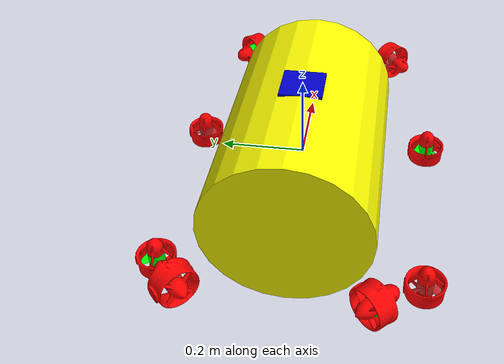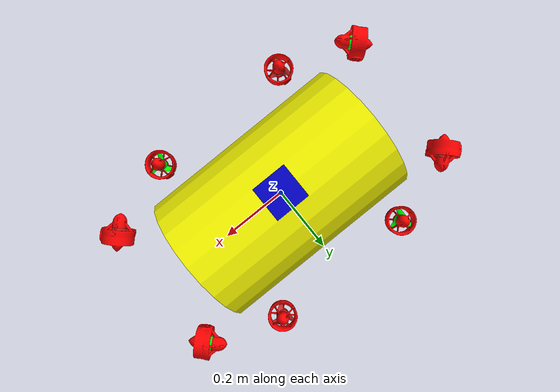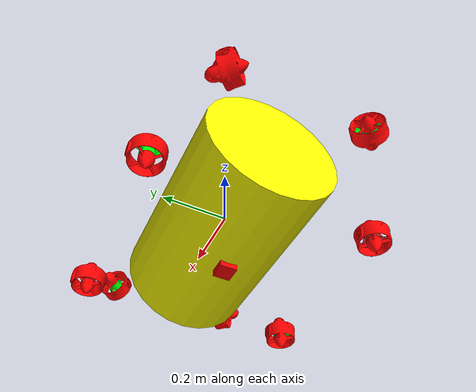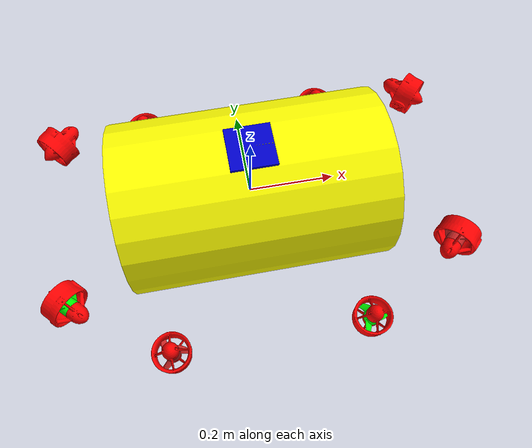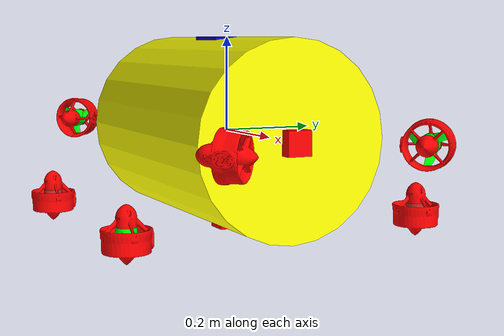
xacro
<?xml version="1.0"?>
<robot xmlns:xacro="http://www.ros.org/wiki/xacro" name="auv">

    <xacro:include filename="$(find calypso_sim)/model/camera.urdf.xacro"/>
    <xacro:include filename="$(find calypso_sim)/model/imu.urdf.xacro"/>
    <xacro:include filename="$(find calypso_sim)/model/thrusters.urdf.xacro"/>
    <xacro:include filename="$(find calypso_sim)/model/chasis.urdf.xacro"/>

    <material name="red">
        <color rgba="1 0 0 1"/>
    </material>

    <material name="blue">
        <color rgba="0 0 0.8 1"/>
    </material>

    <material name="white">
        <color rgba="1 1 1 1"/>
    </material>

     <material name="yellow">
        <color rgba="1 1 0 1"/>
    </material>

      <material name="green">
        <color rgba="0 1 0 1"/>
    </material>

    <xacro:property name="x" default="-0.26"/>
    <xacro:property name="y" default="0.43"/>
    <xacro:property name="z" default="0"/>
    <xacro:property name="r" default="1.57"/>
    <xacro:property name="p" default="0"/>
    <xacro:property name="Y" default="0"/>

    <xacro:base_link xyz="0 0 0" rpy="0 1.57 0"></xacro:base_link>

    <!--
// 2:right upper 1->2
// 1:left upper  2->1
// 4:left lower  3->4
// 3:right lower 4->3
// 6->7
// 7->8
// 8->6

-->

    <xacro:thruster_CCW id="1" parent="base_link" xyz="0.25 0.32 -0.17" rpy="0 0 0" axis="0 0 -1">
    </xacro:thruster_CCW>

    <xacro:thruster_CW id="2" parent="base_link" xyz="0.25 -0.32 -0.17" rpy="0 0 0" axis="0 0 1">
    </xacro:thruster_CW>

    <xacro:thruster_CCW id="3" parent="base_link" xyz="-0.25 -0.32 -0.17" rpy="0 0 0" axis="0 0 -1" >
    </xacro:thruster_CCW>

    <xacro:thruster_CW id="4" parent="base_link" xyz="-0.25 0.32 -0.17" rpy="0 0 0" axis="0 0 1">
    </xacro:thruster_CW>

    <xacro:thruster_CW id="5" parent="base_link" xyz="0.45 0.2 0" rpy="0 1.57 2.35619" axis="0 0 1">
    </xacro:thruster_CW>

    <xacro:thruster_CCW id="6" parent="base_link" xyz="0.45 -0.2 0" rpy="0 1.57 3.92" axis="0 0 -1">
    </xacro:thruster_CCW>

    <xacro:thruster_CW id="7" parent="base_link" xyz="-0.45 -0.2 0" rpy="0 1.57 -0.785398" axis="0 0 1">
    </xacro:thruster_CW>

    <xacro:thruster_CCW id="8" parent="base_link" xyz="-0.45 0.2 0" rpy="0 1.57 0.785398" axis="0 0 -1">
    </xacro:thruster_CCW>

    <xacro:imu id="1" parent="base_link" xyz="0 0 0.15" rpy="0 0 -1.57">
    </xacro:imu>

<!-- this is for the 2d camera in the bottom -->
    <link name="camera_bottom">
      <visual>
        <geometry>
          <box size="0.05 0.05 0.05"/>
        </geometry>
        <material name="red"/>
      </visual>
      <collision>
        <geometry>
          <box size="0.05 0.05 0.05"/>
        </geometry>
      </collision>
      <inertial>
        <mass value="1.5"/>
        <origin xyz="0.0 0.0 0.0" rpy="0 0 0"/>
        <inertia ixx="0.0" ixy="0.0" ixz="0.0" iyy="0.0" iyz="0.0" izz="0.0"/>
      </inertial>
    </link>

    <joint name="base_link_to_camera_bottom_joint" type="fixed">
      <parent link="base_link"/>
      <child link="camera_bottom"/>
      <origin xyz="0 0 -0.19" rpy="1.57 1.57 0"/>
    </joint>

    <joint name="camera_optical_joint_bottom" type="fixed">
      <parent link="camera_bottom"/>
      <child link="camera_link_optical_bottom"/>
      <origin xyz="0 0 0" rpy="${-pi/2} 0 ${-pi/2}"/>
    </joint>

    <link name="camera_link_optical_bottom"></link>

    <gazebo reference="camera_bottom">
      <material>Gazebo/Red</material>

      <sensor name="camera" type="camera">
        <pose> 0 0 0 0 0 0 </pose>
        <visualize>true</visualize>
        <update_rate>10</update_rate>
        <camera>
          <horizontal_fov>1.089</horizontal_fov>
          <image>
            <format>R8G8B8</format>
            <width>640</width>
            <height>480</height>
          </image>
          <clip>
            <near>0.05</near>
            <far>8.0</far>
          </clip>
        </camera>
        <plugin name="camera_controller" filename="libgazebo_ros_camera.so">
          <frame_name>camera_link_optical_bottom</frame_name>
          <cameraName>calypso_sim/camera_bottom</cameraName>
          <imageTopicName>image_raw</imageTopicName>
        </plugin>
      </sensor>
    </gazebo>

<!-- this is for the depth camera in the front -->
    <link name="camera_front">
      <visual>
        <geometry>
          <box size="0.05 0.05 0.05"/>
        </geometry>
        <material name="red"/>
      </visual>
      <collision>
        <geometry>
          <box size="0.05 0.05 0.05"/>
        </geometry>
      </collision>
      <inertial>
        <mass value="1.5"/>
        <origin xyz="0.0 0.0 0.0" rpy="0 0 0"/>
        <inertia ixx="0.0" ixy="0.0" ixz="0.0" iyy="0.0" iyz="0.0" izz="0.0"/>
      </inertial>
    </link>

    <joint name="base_link_to_camera_front_joint" type="fixed">
      <parent link="base_link"/>
      <child link="camera_front"/>
      <origin xyz="0.3 0 0" rpy="0 0 0"/>
    </joint>

    <joint name="camera_optical_joint_front" type="fixed">
      <parent link="camera_front"/>
      <child link="camera_link_optical_front"/>
      <origin xyz="0 0 0" rpy="${-pi/2} 0 ${-pi/2}"/>
    </joint>

    <link name="camera_link_optical_front"></link>

    <gazebo reference="camera_front">
      <material>Gazebo/Red</material>

      <sensor name="camera" type="depth">
        <pose> 0 0 0 0 0 0 </pose>
        <visualize>true</visualize>
        <update_rate>10</update_rate>
        <camera>
          <horizontal_fov>1.089</horizontal_fov>
          <image>
            <format>B8G8R8</format>
            <width>640</width>
            <height>480</height>
          </image>
          <clip>
            <near>0.05</near>
            <far>8.0</far>
          </clip>
        </camera>
        <plugin name="camera_plugin" filename="libgazebo_ros_openni_kinect.so">
          <frame_name>camera_link_optical_front</frame_name>

          <alwaysOn>true</alwaysOn>
          <cameraName>calypso_sim/camera_front</cameraName>
          <imageTopicName>/yash_cam/image_raw</imageTopicName>
          <depthImageTopicName>image_raw</depthImageTopicName>
          <depthImageCameraInfoTopicName>camera_info</depthImageCameraInfoTopicName>
          <pointCloudTopicName>points</pointCloudTopicName>
          <pointCloudCutoff>0.5</pointCloudCutoff>
          <pointCloudCutoffMax>3.0</pointCloudCutoffMax>

        </plugin>
      </sensor>
    </gazebo>

    <gazebo>
      <plugin name="gazebo_ros_control" filename="libgazebo_ros_control.so">
          <robotSimType>gazebo_ros_control/DefaultRobotHWSim</robotSimType>
      </plugin>
    </gazebo>

  <gazebo>
    <plugin name="freebuoyancy_gazebo" filename="libfreebuoyancy_gazebo.so">
      <descriptionParam>robot_description</descriptionParam>
      <alwaysOn>true</alwaysOn>
      <surface>0 0 40</surface>
      <updateRate>.001</updateRate>

      <link name='base_link'>
        <buoyancy>
          <compensation>0.0</compensation>
          <origin xyz="0 0 0"/>
        </buoyancy>
      </link>
    </plugin>
  </gazebo>

</robot>

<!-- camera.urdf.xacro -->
<robot xmlns:xacro="http://www.ros.org/wiki/xacro" name="camera">

    <xacro:property name="pi" value="3.1415926535897931"/>

    <xacro:macro name="camera" params="id xyz rpy parent">
        <joint name="camera_${id}_joint" type="fixed">
            <axis xyz="0 1 0" />
            <origin xyz="${xyz}" rpy="${rpy}"/>
            <parent link="${parent}"/>
            <child link="camera_${id}"/>
        </joint>

        <link name="camera_${id}">
            <collision>
                <origin xyz="0 0 0" rpy="0 0 0"/>
                <geometry>
                    <box size="0.02 0.08 0.05"/>
                </geometry>
            </collision>
            <visual>
                <origin xyz="0 0 0" rpy="0 0 0"/>
                <geometry>
                    <box size="0.02 0.08 0.05"/>
                </geometry>
                <material name="blue"/>
            </visual>
            <inertial>
                <mass value="0.0001" />
                <origin xyz="0 0 0" rpy="0 0 ${pi}"/>
                <inertia ixx="0.0000001" ixy="0" ixz="0" iyy="0.0000001" iyz="0" izz="0.0000001" />
            </inertial>
        </link>

        <gazebo reference="camera_${id}">
            <sensor type="camera" name="camera">
                <update_rate>30.0</update_rate>
                <camera name="head">
                    <horizontal_fov>1.3962634</horizontal_fov>
                    <image>
                        <width>800</width>
                        <height>600</height>
                        <format>R8G8B8</format>
                    </image>
                    <clip>
                        <near>0.02</near>
                        <far>300</far>
                    </clip>
                    <noise>
                        <type>gaussian</type>
                        <mean>0.0</mean>
                        <stddev>0.007</stddev>
                    </noise>
                </camera>
                <plugin name="camera_controller" filename="libgazebo_ros_camera.so">
                    <alwaysOn>true</alwaysOn>
                    <updateRate>0.0</updateRate>
                    <cameraName>calypso_sim/camera_${id}</cameraName>
                    <imageTopicName>image</imageTopicName>
                    <cameraInfoTopicName>info</cameraInfoTopicName>
                    <frameName>camera_${id}</frameName>
                    <hackBaseline>0.07</hackBaseline>
                    <distortionK1>0.0</distortionK1>
                    <distortionK2>0.0</distortionK2>
                    <distortionK3>0.0</distortionK3>
                    <distortionT1>0.0</distortionT1>
                    <distortionT2>0.0</distortionT2>
                </plugin>
                <visualize>true</visualize>
            </sensor>
    </gazebo>

    </xacro:macro>

</robot>

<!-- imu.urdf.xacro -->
<robot xmlns:xacro="http://www.ros.org/wiki/xacro" id="imu">

    <xacro:macro name="imu" params="id parent xyz rpy">

        <joint name="imu_${id}_joint" type="fixed">
            <origin xyz="${xyz}" rpy="${rpy}"/>
            <parent link="${parent}"/>
            <child link="imu_${id}"/>
        </joint>

        <link name="imu_${id}">
            <collision>
                <geometry>
                    <box size="0.1 0.1 0.1"/>
                </geometry>
            </collision>
            <visual>
                <geometry>
                    <box size="0.1 0.1 0.1"/>
                </geometry>
                <material name="blue"/>
            </visual>
            <inertial>
                <mass value="0.0001" />
                <origin xyz="0 0 0" rpy="0 0 ${pi}"/>
                <inertia ixx="0.0" ixy="0" ixz="0" iyy="0.0" iyz="0" izz="0.0" />
            </inertial>
        </link>

=       <gazebo>

            <plugin name="gazebo_ros_imu_${id}_controller" filename="libgazebo_ros_imu.so">

                <topicName>/calypso/imu/data</topicName>

                <serviceName>/calypso/imu/service</serviceName>

                <bodyName>base_link</bodyName>

                <gaussianNoise>0</gaussianNoise>

                <rpyOffsets>0 0 0</rpyOffsets>

                <updateRate>10.0</updateRate>

                <alwaysOn>true</alwaysOn>

                <gaussianNoise>0</gaussianNoise>

            </plugin>

        </gazebo>

    </xacro:macro>
</robot>

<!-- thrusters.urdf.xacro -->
<robot xmlns:xacro="http://www.ros.org/wiki/xacro" name="thruster">

  <xacro:property name="thrusterCCW_path" value="package://calypso_sim/meshes/thrusters/T200_Thruster_CCW/meshes/"/>
  <xacro:property name="thrusterCW_path" value="package://calypso_sim/meshes/thrusters/T200_Thruster_CW/meshes/"/>

   <xacro:macro name="thruster_CCW" params="id parent xyz rpy axis">
    <link name="thruster_${id}_link">
       <visual>
        <material name="red"/>
        <geometry>
           <mesh filename="${thrusterCCW_path}T200_Thruster.dae" scale="1 1 1"/>
        </geometry>
      </visual>

      <collision>
        <geometry>
          <mesh filename="${thrusterCCW_path}T200_Thruster.dae" scale="1 1 1"/>
        </geometry>
      </collision>

      <inertial>
        <mass value="3.44"/>
        <inertia ixx="0" ixy="0.0" ixz="0.0" iyy="0" iyz="0.0" izz="0"/>
      </inertial>

    </link>

    <joint name="thruster_${id}_to_body" type="fixed">
      <parent link="${parent}"/>
      <child link="thruster_${id}_link"/>
      <origin rpy="${rpy}" xyz="${xyz}"/>
    </joint>

    <link name='prop_${id}'>
      <inertial>
        <mass value="0.10000000"/>
        <inertia ixx="0.00002540" ixy="0.00000000" ixz="0.00000000" iyy="0.00002541" iyz="-0.00000000" izz="0.00003829"/>
      </inertial>

      <visual>
        <geometry>
          <mesh filename="${thrusterCCW_path}T200_Prop_CCW.dae" scale="1 1 1"/>
        </geometry>
      </visual>

      <collision>
        <geometry>
          <mesh filename="${thrusterCCW_path}T200_Prop_CCW.dae" scale="1 1 1"/>
        </geometry>
      </collision>

    </link>

    <joint name='prop_${id}_to_thruster_${id}_joint' type='continuous'>
      <parent link="thruster_${id}_link"/>
      <child link="prop_${id}"/>
      <axis xyz="${axis}"/>
    </joint>

    <transmission name="thruster_${id}_trainsmission" >
      <type>transmission_interface/SimpleTransmission</type>
        <joint name="prop_${id}_to_thruster_${id}_joint">
          <hardwareInterface>hardware_interface/VelocityJointInterface</hardwareInterface>
        </joint>
      <actuator name="BLDC_motor_${id}">
        <hardwareInterface>hardware_interface/VelocityJointInterface</hardwareInterface>
        <mechanicalReduction>1</mechanicalReduction>
      </actuator>
	  </transmission>

    <gazebo>
      <plugin name='blade_1_${id}' filename='libLiftDragPlugin.so'>
        <a0>0.3</a0>
        <alpha_stall>1.4</alpha_stall>
        <cla>4.2500</cla>
        <cda>0.10</cda>
        <cma>0.00</cma>
        <cla_stall>-0.025</cla_stall>
        <cda_stall>0.0</cda_stall>
        <cma_stall>0.0</cma_stall>
        <area>0.002</area>
        <air_density>1000</air_density>
        <cp>0.084 0 0</cp>
        <forward>0 -1 0</forward>
        <upward>0 0 1</upward>
        <link_name>prop_${id}</link_name>
      </plugin>

      <plugin name='blade_2_${id}' filename='libLiftDragPlugin.so'>
        <a0>0.3</a0>
        <alpha_stall>1.4</alpha_stall>
        <cla>4.2500</cla>
        <cda>0.10</cda>
        <cma>0.00</cma>
        <cla_stall>-0.025</cla_stall>
        <cda_stall>0.0</cda_stall>
        <cma_stall>0.0</cma_stall>
        <area>0.002</area>
        <air_density>1000</air_density>
        <cp>-0.084 0 0</cp>
        <forward>0 1 0</forward>
        <upward>0 0 1</upward>
        <link_name>prop_${id}</link_name>
      </plugin>

    </gazebo>

    <gazebo>
      <static>0</static>
      <allow_auto_disable>0</allow_auto_disable>
    </gazebo>

     <gazebo reference="prop_${id}">
        <material>Gazebo/Red</material>
    </gazebo>

  </xacro:macro>

  <xacro:macro name="thruster_CW" params="id parent xyz rpy axis">
    <link name="thruster_${id}_link">
       <visual>
        <geometry>
           <mesh filename="${thrusterCW_path}T200_Thruster.dae" scale="1 1 1"/>
        </geometry>
        <material name="red"/>
      </visual>

      <collision>
        <geometry>
          <mesh filename="${thrusterCW_path}T200_Thruster.dae" scale="1 1 1"/>
        </geometry>
      </collision>

      <inertial>
        <mass value="3.44"/>
        <inertia ixx="0" ixy="0.0" ixz="0.0" iyy="0" iyz="0.0" izz="0"/>
      </inertial>

    </link>

    <joint name="thruster_${id}_to_body" type="fixed">
      <parent link="${parent}"/>
      <child link="thruster_${id}_link"/>
      <origin rpy="${rpy}" xyz="${xyz}"/>
    </joint>

    <link name='prop_${id}'>
      <inertial>
        <mass value="0.10000000"/>
        <inertia ixx="0.00002540" ixy="0.00000000" ixz="0.00000000" iyy="0.00002541" iyz="-0.00000000" izz="0.00003829"/>
      </inertial>

      <visual>
        <geometry>
          <mesh filename="${thrusterCW_path}T200_Prop_CW.dae" scale="1 1 1"/>
        </geometry>
        <material name="green"/>
      </visual>

      <collision>
        <geometry>
          <mesh filename="${thrusterCW_path}T200_Prop_CW.dae" scale="1 1 1"/>
        </geometry>
      </collision>

    </link>

    <joint name='prop_${id}_to_thruster_${id}_joint' type='continuous'>
      <parent link="thruster_${id}_link"/>
      <child link="prop_${id}"/>
      <axis xyz="${axis}"/>
    </joint>

    <transmission name="thruster_${id}_trainsmission" >
      <type>transmission_interface/SimpleTransmission</type>
        <joint name="prop_${id}_to_thruster_${id}_joint">
          <hardwareInterface>hardware_interface/VelocityJointInterface</hardwareInterface>
        </joint>
      <actuator name="BLDC_motor_${id}">
        <hardwareInterface>hardware_interface/VelocityJointInterface</hardwareInterface>
        <mechanicalReduction>1</mechanicalReduction>
      </actuator>
	  </transmission>

    <gazebo>
      <plugin name='blade_1_${id}' filename='libLiftDragPlugin.so'>
        <a0>0.3</a0>
        <alpha_stall>1.4</alpha_stall>
        <cla>4.2500</cla>
        <cda>0.10</cda>
        <cma>0.00</cma>
        <cla_stall>-0.025</cla_stall>
        <cda_stall>0.0</cda_stall>
        <cma_stall>0.0</cma_stall>
        <area>0.002</area>
        <air_density>1000</air_density>
        <cp>0.084 0 0</cp>
        <forward>0 1 0</forward>
        <upward>0 0 1</upward>
        <link_name>prop_${id}</link_name>
      </plugin>

      <plugin name='blade_2_${id}' filename='libLiftDragPlugin.so'>
        <a0>0.3</a0>
        <alpha_stall>1.4</alpha_stall>
        <cla>4.2500</cla>
        <cda>0.10</cda>
        <cma>0.00</cma>
        <cla_stall>-0.025</cla_stall>
        <cda_stall>0.0</cda_stall>
        <cma_stall>0.0</cma_stall>
        <area>0.002</area>
        <air_density>1000</air_density>
        <cp>-0.084 0 0</cp>
        <forward>0 -1 0</forward>
        <upward>0 0 1</upward>
        <link_name>prop_${id}</link_name>
      </plugin>
    </gazebo>

    <gazebo>
      <static>0</static>
      <allow_auto_disable>0</allow_auto_disable>
    </gazebo>

     <gazebo reference="prop_${id}">
        <material>Gazebo/Green</material>
    </gazebo>

  </xacro:macro>

</robot>

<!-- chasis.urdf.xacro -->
<robot xmlns:xacro="http://www.ros.org/wiki/xacro" name="auv">

  <xacro:macro name="base_link" params="xyz rpy">
  <link name="base_link">
    <visual>
      <geometry>
        <cylinder length="0.6" radius="0.2"/>
      </geometry>
      <origin xyz="${xyz}" rpy="${rpy}"/>
      <material name="yellow"/>
    </visual>
    <collision>
      <geometry>
        <cylinder length="0.6" radius="0.2"/>
      </geometry>
      <origin xyz="${xyz}" rpy="${rpy}"/>
    </collision>
    <inertial>
      <mass value="37"/>
      <inertia ixx="-0.00000934" ixy="-0.00000934" ixz="-0.00000934" iyy="-0.00000934" iyz="-0.00000934" izz="-0.00000934"/>
    </inertial>
  </link>

  </xacro:macro>

</robot>
